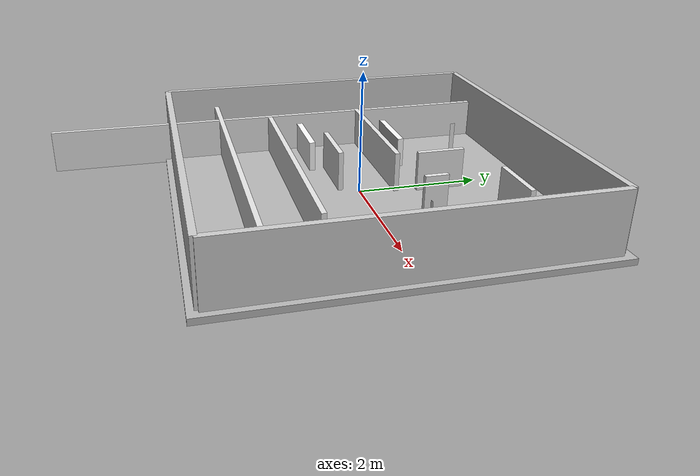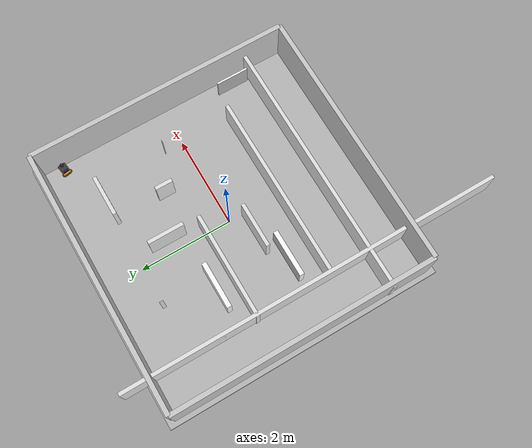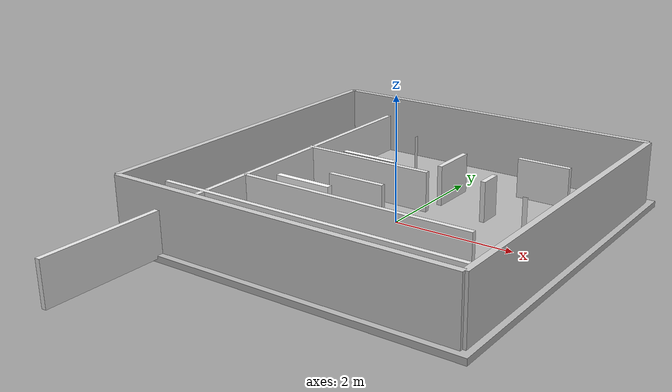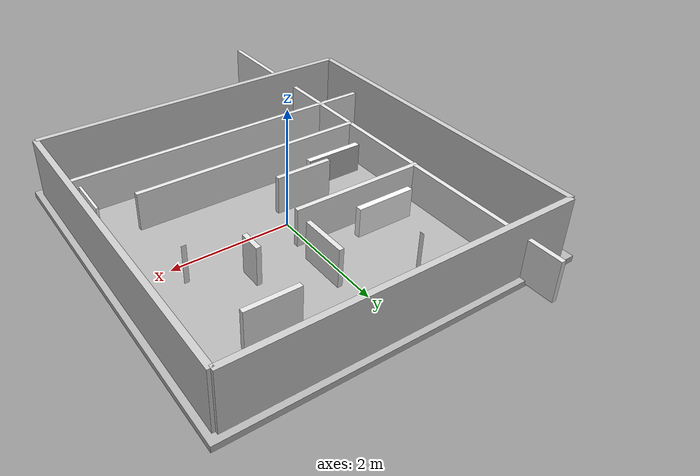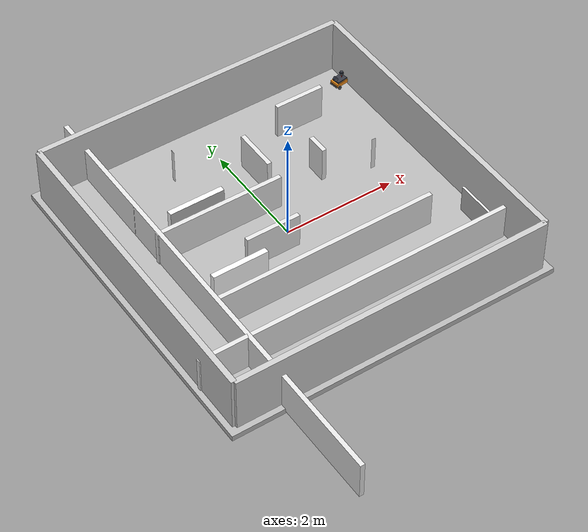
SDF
<sdf version="1.7">
 <world name="competition_world">
  <physics type="ode">
   <max_step_size>0.001</max_step_size>
   <real_time_factor>1</real_time_factor>
   <real_time_update_rate>1000</real_time_update_rate>
  </physics>
  <light name="sun" type="directional">
   <pose>0 0 10 0 -0 0</pose>
   <diffuse>0.8 0.8 0.8 1</diffuse>
   <specular>0.2 0.2 0.2 1</specular>
   <attenuation>
    <range>1000</range>
    <constant>0.9</constant>
    <linear>0.01</linear>
    <quadratic>0.001</quadratic>
   </attenuation>
   <direction>-0.5 0.1 -0.9</direction>
   <spot><inner_angle>0</inner_angle><outer_angle>0</outer_angle><falloff>0</falloff></spot>
  </light>
  <model name="competition_ground">
   <pose>-0.007054 -0.011171 0 0 -0 0</pose>
   <static>1</static>
   <link name="link">
    <collision name="collision"><geometry><box><size>6 6 0.1</size></box></geometry></collision>
    <visual name="visual">
     <geometry><box><size>6 6 0.1</size></box></geometry>
     <material>
      <script>
       <uri>model://competition_ground/materials/scripts</uri>
       <uri>model://competition_ground/materials/textures</uri>
       <name>CompetitionGround/Ground</name>
      </script>
      <pbr><metal><albedo_map>model://competition_ground/materials/textures/map.png</albedo_map></metal></pbr>
     </material>
    </visual>
   </link>
   <link name="north_wall">
    <pose>0 2.85 0.55 0 -0 0</pose>
    <collision name="c"><geometry><box><size>5.7 0.1 1</size></box></geometry></collision>
    <visual name="v">
     <geometry><box><size>5.7 0.1 1</size></box></geometry>
     <material><ambient>0.7 0.7 0.7 1</ambient><diffuse>0.8 0.8 0.8 1</diffuse></material>
    </visual>
   </link>
   <link name="south_wall">
    <pose>0 -2.85 0.55 0 -0 0</pose>
    <collision name="c"><geometry><box><size>5.7 0.1 1</size></box></geometry></collision>
    <visual name="v">
     <geometry><box><size>5.7 0.1 1</size></box></geometry>
     <material><ambient>0.7 0.7 0.7 1</ambient><diffuse>0.8 0.8 0.8 1</diffuse></material>
    </visual>
   </link>
   <link name="west_wall">
    <pose>-2.85 0 0.55 0 -0 0</pose>
    <collision name="c"><geometry><box><size>0.1 5.7 1</size></box></geometry></collision>
    <visual name="v">
     <geometry><box><size>0.1 5.7 1</size></box></geometry>
     <material><ambient>0.7 0.7 0.7 1</ambient><diffuse>0.8 0.8 0.8 1</diffuse></material>
    </visual>
   </link>
   <link name="east_wall">
    <pose>2.85 0 0.55 0 -0 0</pose>
    <collision name="c"><geometry><box><size>0.1 5.7 1</size></box></geometry></collision>
    <visual name="v">
     <geometry><box><size>0.1 5.7 1</size></box></geometry>
     <material><ambient>0.7 0.7 0.7 1</ambient><diffuse>0.8 0.8 0.8 1</diffuse></material>
    </visual>
   </link>
  </model>
  <model name="person_area_1">
   <static>1</static>
   <link name="link">
    <visual name="visual"><geometry><mesh><uri>model://ro1/meshes/ro1.dae</uri></mesh></geometry></visual>
    <collision name="collision"><geometry><box><size>0.6 0.3 1.7</size></box></geometry></collision>
   </link>
   <pose>-1.13803 0.913555 0.1 0 -0 0</pose>
  </model>
  <model name="person_area_2">
   <static>1</static>
   <link name="link">
    <visual name="visual"><geometry><mesh><uri>model://ro2/meshes/ro2.dae</uri></mesh></geometry></visual>
    <collision name="collision"><geometry><box><size>0.6 0.3 1.7</size></box></geometry></collision>
   </link>
   <pose>-1.3 -0.6 0.1 0 -0 3.14159</pose>
  </model>
  <model name="car_plate_area">
   <static>1</static>
   <link name="link">
    <visual name="visual"><geometry><mesh><uri>model://cp/meshes/cp.dae</uri></mesh></geometry></visual>
    <collision name="collision"><geometry><box><size>0.4 0.3 0.3</size></box></geometry></collision>
   </link>
   <pose>2.55 -1.55 0.1 0 0 -1.57079</pose>
  </model>
  <model name="my_car">
   <pose>2.66017 2.38667 0.05 -0 -0 -2.98949</pose>
   <link name="chassis">
    <inertial>
     <mass>1.2</mass>
     <inertia><ixx>0.0034</ixx><ixy>0</ixy><ixz>0</ixz><iyy>0.0063</iyy><iyz>0</iyz><izz>0.0087</izz></inertia>
    </inertial>
    <collision name="body_collision">
     <pose>0 0 0.075 0 -0 0</pose>
     <geometry><box><size>0.24 0.17 0.07</size></box></geometry>
    </collision>
    <collision name="caster_front">
     <pose>0.09 0 0.015 0 -0 0</pose>
     <geometry><sphere><radius>0.015</radius></sphere></geometry>
     <surface><friction><ode><mu>0.01</mu><mu2>0.01</mu2></ode></friction></surface>
    </collision>
    <collision name="caster_back">
     <pose>-0.09 0 0.015 0 -0 0</pose>
     <geometry><sphere><radius>0.015</radius></sphere></geometry>
     <surface><friction><ode><mu>0.01</mu><mu2>0.01</mu2></ode></friction></surface>
    </collision>
    <visual name="body_lower">
     <pose>0 0 0.075 0 -0 0</pose>
     <geometry><box><size>0.24 0.17 0.07</size></box></geometry>
     <material>
      <ambient>0.85 0.45 0.05 1</ambient>
      <diffuse>1 0.58 0.1 1</diffuse>
      <specular>0.5 0.5 0.5 1</specular>
     </material>
    </visual>
    <visual name="body_upper">
     <pose>-0.01 0 0.125 0 -0 0</pose>
     <geometry><box><size>0.2 0.15 0.035</size></box></geometry>
     <material>
      <ambient>0.12 0.12 0.14 1</ambient>
      <diffuse>0.22 0.23 0.27 1</diffuse>
      <specular>0.6 0.6 0.65 1</specular>
     </material>
    </visual>
    <visual name="bumper">
     <pose>0.125 0 0.055 0 -0 0</pose>
     <geometry><box><size>0.015 0.16 0.03</size></box></geometry>
     <material>
      <ambient>0.05 0.05 0.05 1</ambient>
      <diffuse>0.1 0.1 0.1 1</diffuse>
      <specular>0.3 0.3 0.3 1</specular>
     </material>
    </visual>
    <visual name="caster_front_v">
     <pose>0.09 0 0.015 0 -0 0</pose>
     <geometry><sphere><radius>0.015</radius></sphere></geometry>
     <material><ambient>0.02 0.02 0.02 1</ambient><diffuse>0.05 0.05 0.05 1</diffuse></material>
    </visual>
    <visual name="caster_back_v">
     <pose>-0.09 0 0.015 0 -0 0</pose>
     <geometry><sphere><radius>0.015</radius></sphere></geometry>
     <material><ambient>0.02 0.02 0.02 1</ambient><diffuse>0.05 0.05 0.05 1</diffuse></material>
    </visual>
    <visual name="camera_mount">
     <pose>0.075 0 0.155 0 -0 0</pose>
     <geometry><box><size>0.03 0.04 0.025</size></box></geometry>
     <material>
      <ambient>0.05 0.05 0.05 1</ambient>
      <diffuse>0.1 0.1 0.1 1</diffuse>
      <specular>0.3 0.3 0.3 1</specular>
     </material>
    </visual>
    <visual name="camera_body">
     <pose>0.085 0 0.185 0 -0 0</pose>
     <geometry><box><size>0.035 0.09 0.03</size></box></geometry>
     <material>
      <ambient>0.08 0.08 0.1 1</ambient>
      <diffuse>0.15 0.16 0.2 1</diffuse>
      <specular>0.7 0.7 0.75 1</specular>
     </material>
    </visual>
    <visual name="camera_lens">
     <pose>0.105 0 0.185 3.14159 1.57079 3.14159</pose>
     <geometry><cylinder><radius>0.011</radius><length>0.008</length></cylinder></geometry>
     <material>
      <ambient>0.02 0.05 0.15 1</ambient>
      <diffuse>0.05 0.15 0.45 1</diffuse>
      <specular>1 1 1 1</specular>
      <emissive>0.02 0.05 0.15 1</emissive>
     </material>
    </visual>
    <visual name="lidar_mast">
     <pose>-0.05 0 0.175 0 -0 0</pose>
     <geometry><cylinder><radius>0.008</radius><length>0.07</length></cylinder></geometry>
     <material>
      <ambient>0.5 0.08 0.05 1</ambient>
      <diffuse>0.8 0.15 0.1 1</diffuse>
      <specular>0.4 0.4 0.4 1</specular>
     </material>
    </visual>
    <visual name="lidar_base">
     <pose>-0.05 0 0.2225 0 -0 0</pose>
     <geometry><cylinder><radius>0.038</radius><length>0.025</length></cylinder></geometry>
     <material>
      <ambient>0.03 0.03 0.035 1</ambient>
      <diffuse>0.08 0.08 0.1 1</diffuse>
      <specular>0.5 0.5 0.55 1</specular>
     </material>
    </visual>
    <visual name="lidar_head">
     <pose>-0.05 0 0.2475 0 -0 0</pose>
     <geometry><cylinder><radius>0.028</radius><length>0.028</length></cylinder></geometry>
     <material>
      <ambient>0.1 0.1 0.12 1</ambient>
      <diffuse>0.2 0.21 0.25 1</diffuse>
      <specular>0.8 0.8 0.85 1</specular>
     </material>
    </visual>
    <visual name="lidar_window">
     <pose>-0.05 0 0.243 0 -0 0</pose>
     <geometry><cylinder><radius>0.0285</radius><length>0.01</length></cylinder></geometry>
     <material>
      <ambient>0.05 0.08 0.12 1</ambient>
      <diffuse>0.1 0.2 0.35 1</diffuse>
      <specular>1 1 1 1</specular>
     </material>
    </visual>
   </link>
   <link name="left_wheel">
    <pose>0.075 0.095 0.033 0 -0 0</pose>
    <inertial>
     <mass>0.15</mass>
     <inertia><ixx>0.0001</ixx><ixy>0</ixy><ixz>0</ixz><iyy>0.0001</iyy><iyz>0</iyz><izz>0.0001</izz></inertia>
    </inertial>
    <collision name="collision">
     <pose>0 0 0 1.5708 -0 0</pose>
     <geometry><cylinder><radius>0.033</radius><length>0.022</length></cylinder></geometry>
     <surface><friction><ode><mu>1.5</mu><mu2>1.5</mu2></ode></friction></surface>
    </collision>
    <visual name="visual">
     <pose>0 0 0 1.5708 -0 0</pose>
     <geometry><cylinder><radius>0.033</radius><length>0.022</length></cylinder></geometry>
     <material>
      <ambient>0.02 0.02 0.02 1</ambient>
      <diffuse>0.05 0.05 0.05 1</diffuse>
      <specular>0.1 0.1 0.1 1</specular>
     </material>
    </visual>
    <visual name="hub">
     <pose>0 0.012 0 1.5708 -0 0</pose>
     <geometry><cylinder><radius>0.014</radius><length>0.002</length></cylinder></geometry>
     <material>
      <ambient>0.5 0.5 0.52 1</ambient>
      <diffuse>0.75 0.75 0.78 1</diffuse>
      <specular>0.9 0.9 0.9 1</specular>
     </material>
    </visual>
   </link>
   <joint name="left_wheel_joint" type="revolute">
    <parent>chassis</parent>
    <child>left_wheel</child>
    <axis>
     <xyz>0 1 0</xyz>
     <limit><lower>-1e+16</lower><upper>1e+16</upper></limit>
     <dynamics><spring_reference>0</spring_reference><spring_stiffness>0</spring_stiffness></dynamics>
    </axis>
   </joint>
   <link name="right_wheel">
    <pose>0.075 -0.095 0.033 0 -0 0</pose>
    <inertial>
     <mass>0.15</mass>
     <inertia><ixx>0.0001</ixx><ixy>0</ixy><ixz>0</ixz><iyy>0.0001</iyy><iyz>0</iyz><izz>0.0001</izz></inertia>
    </inertial>
    <collision name="collision">
     <pose>0 0 0 1.5708 -0 0</pose>
     <geometry><cylinder><radius>0.033</radius><length>0.022</length></cylinder></geometry>
     <surface><friction><ode><mu>1.5</mu><mu2>1.5</mu2></ode></friction></surface>
    </collision>
    <visual name="visual">
     <pose>0 0 0 1.5708 -0 0</pose>
     <geometry><cylinder><radius>0.033</radius><length>0.022</length></cylinder></geometry>
     <material>
      <ambient>0.02 0.02 0.02 1</ambient>
      <diffuse>0.05 0.05 0.05 1</diffuse>
      <specular>0.1 0.1 0.1 1</specular>
     </material>
    </visual>
    <visual name="hub">
     <pose>0 -0.012 0 1.5708 -0 0</pose>
     <geometry><cylinder><radius>0.014</radius><length>0.002</length></cylinder></geometry>
     <material>
      <ambient>0.5 0.5 0.52 1</ambient>
      <diffuse>0.75 0.75 0.78 1</diffuse>
      <specular>0.9 0.9 0.9 1</specular>
     </material>
    </visual>
   </link>
   <joint name="right_wheel_joint" type="revolute">
    <parent>chassis</parent>
    <child>right_wheel</child>
    <axis>
     <xyz>0 1 0</xyz>
     <limit><lower>-1e+16</lower><upper>1e+16</upper></limit>
     <dynamics><spring_reference>0</spring_reference><spring_stiffness>0</spring_stiffness></dynamics>
    </axis>
   </joint>
   <plugin name="diff_drive" filename="libgazebo_ros_diff_drive.so">
    <alwaysOn>1</alwaysOn>
    <updateRate>50</updateRate>
    <legacyMode>0</legacyMode>
    <leftJoint>left_wheel_joint</leftJoint>
    <rightJoint>right_wheel_joint</rightJoint>
    <wheelSeparation>0.19</wheelSeparation>
    <wheelDiameter>0.066</wheelDiameter>
    <torque>10</torque>
    <commandTopic>cmd_vel</commandTopic>
    <odometryTopic>odom</odometryTopic>
    <odometryFrame>odom</odometryFrame>
    <robotBaseFrame>chassis</robotBaseFrame>
    <publishOdometry>1</publishOdometry>
    <publishTf>1</publishTf>
    <publishWheelTF>0</publishWheelTF>
    <publishWheelJointState>1</publishWheelJointState>
   </plugin>
   <link name="camera_link">
    <pose>0.105 0 0.185 0 -0 0</pose>
    <inertial>
     <mass>0.01</mass>
     <inertia><ixx>1e-06</ixx><ixy>0</ixy><ixz>0</ixz><iyy>1e-06</iyy><iyz>0</iyz><izz>1e-06</izz></inertia>
    </inertial>
    <sensor name="camera" type="camera">
     <always_on>1</always_on>
     <update_rate>20</update_rate>
     <visualize>1</visualize>
     <camera>
      <horizontal_fov>1.047</horizontal_fov>
      <image><width>640</width><height>480</height><format>R8G8B8</format></image>
      <clip><near>0.05</near><far>10</far></clip>
     </camera>
     <plugin name="camera_plugin" filename="libgazebo_ros_camera.so">
      <alwaysOn>1</alwaysOn>
      <cameraName>camera</cameraName>
      <imageTopicName>image_raw</imageTopicName>
      <cameraInfoTopicName>camera_info</cameraInfoTopicName>
      <frameName>camera_link</frameName>
      <hackBaseline>0</hackBaseline>
     </plugin>
    </sensor>
   </link>
   <joint name="camera_joint" type="fixed"><parent>chassis</parent><child>camera_link</child></joint>
   <link name="lidar_link">
    <pose>-0.05 0 0.25 0 -0 0</pose>
    <inertial>
     <mass>0.01</mass>
     <inertia><ixx>1e-06</ixx><ixy>0</ixy><ixz>0</ixz><iyy>1e-06</iyy><iyz>0</iyz><izz>1e-06</izz></inertia>
    </inertial>
    <sensor name="lidar" type="ray">
     <always_on>1</always_on>
     <update_rate>10</update_rate>
     <visualize>0</visualize>
     <ray>
      <scan>
       <horizontal>
        <samples>360</samples>
        <resolution>1</resolution>
        <min_angle>-3.14159</min_angle>
        <max_angle>3.14159</max_angle>
       </horizontal>
       <vertical><samples>1</samples><min_angle>0</min_angle><max_angle>0</max_angle></vertical>
      </scan>
      <range><min>0.06</min><max>8</max><resolution>0.01</resolution></range>
     </ray>
     <plugin name="lidar_plugin" filename="libgazebo_ros_laser.so">
      <topicName>scan</topicName>
      <frameName>lidar_link</frameName>
     </plugin>
    </sensor>
   </link>
   <joint name="lidar_joint" type="fixed"><parent>chassis</parent><child>lidar_link</child></joint>
  </model>
  <model name="low_wall_0">
   <static>1</static>
   <pose>-0.081356 -1.98399 0.35 0 -0 0</pose>
   <link name="link">
    <visual name="v">
     <geometry><box><size>5.68869 0.08 0.7</size></box></geometry>
     <material><ambient>0.85 0.85 0.85 1</ambient><diffuse>0.9 0.9 0.9 1</diffuse></material>
    </visual>
    <collision name="c"><geometry><box><size>5.68869 0.08 0.7</size></box></geometry></collision>
   </link>
  </model>
  <model name="low_wall_1">
   <static>1</static>
   <pose>-0.036421 -1.10395 0.35 0 -0 0</pose>
   <link name="link">
    <visual name="v">
     <geometry><box><size>4.02198 0.08 0.7</size></box></geometry>
     <material><ambient>0.85 0.85 0.85 1</ambient><diffuse>0.9 0.9 0.9 1</diffuse></material>
    </visual>
    <collision name="c"><geometry><box><size>4.02198 0.08 0.7</size></box></geometry></collision>
   </link>
  </model>
  <model name="low_wall_2">
   <static>1</static>
   <pose>-0.504913 -0.318492 0.35 0 -0 0</pose>
   <link name="link">
    <visual name="v">
     <geometry><box><size>0.978753 0.08 0.7</size></box></geometry>
     <material><ambient>0.85 0.85 0.85 1</ambient><diffuse>0.9 0.9 0.9 1</diffuse></material>
    </visual>
    <collision name="c"><geometry><box><size>0.978753 0.08 0.7</size></box></geometry></collision>
   </link>
  </model>
  <model name="low_wall_3">
   <static>1</static>
   <pose>1.51532 1.93752 0.35 0 -0 0</pose>
   <link name="link">
    <visual name="v">
     <geometry><box><size>0.886981 0.08 0.7</size></box></geometry>
     <material><ambient>0.85 0.85 0.85 1</ambient><diffuse>0.9 0.9 0.9 1</diffuse></material>
    </visual>
    <collision name="c"><geometry><box><size>0.886981 0.08 0.7</size></box></geometry></collision>
   </link>
  </model>
  <model name="low_wall_cl">
   <static>1</static>
   <pose>-0.908954 1.97551 0.35 0 -0 0</pose>
   <link name="link">
    <visual name="v">
     <geometry><box><size>0 0.08 0.7</size></box></geometry>
     <material><ambient>0.85 0.85 0.85 1</ambient><diffuse>0.9 0.9 0.9 1</diffuse></material>
    </visual>
    <collision name="c"><geometry><box><size>0 0.08 0.7</size></box></geometry></collision>
   </link>
  </model>
  <model name="low_wall_og">
   <static>1</static>
   <pose>-0.936386 0.547194 0.35 0 -0 0</pose>
   <link name="link">
    <visual name="v">
     <geometry><box><size>2.30571 0.08 0.7</size></box></geometry>
     <material><ambient>0.85 0.85 0.85 1</ambient><diffuse>0.9 0.9 0.9 1</diffuse></material>
    </visual>
    <collision name="c"><geometry><box><size>2.30571 0.08 0.7</size></box></geometry></collision>
   </link>
  </model>
  <model name="low_wall_3c">
   <static>1</static>
   <pose>-2.03216 -0.713632 0.35 0 -0 1.5708</pose>
   <link name="link">
    <visual name="v">
     <geometry><box><size>8.35316 0.08 0.7</size></box></geometry>
     <material><ambient>0.85 0.85 0.85 1</ambient><diffuse>0.9 0.9 0.9 1</diffuse></material>
    </visual>
    <collision name="c"><geometry><box><size>8.35316 0.08 0.7</size></box></geometry></collision>
   </link>
  </model>
  <model name="low_wall_4">
   <static>1</static>
   <pose>1.1339 0.823369 0.35 0 0 -1.5708</pose>
   <link name="link">
    <visual name="v">
     <geometry><box><size>0.370162 0.08 0.7</size></box></geometry>
     <material><ambient>0.85 0.85 0.85 1</ambient><diffuse>0.9 0.9 0.9 1</diffuse></material>
    </visual>
    <collision name="c"><geometry><box><size>0.370162 0.08 0.7</size></box></geometry></collision>
   </link>
  </model>
  <model name="low_wall_4c">
   <static>1</static>
   <pose>1.95229 0.413447 0.35 0 0 -1.5708</pose>
   <link name="link">
    <visual name="v">
     <geometry><box><size>0 0.08 0.7</size></box></geometry>
     <material><ambient>0.85 0.85 0.85 1</ambient><diffuse>0.9 0.9 0.9 1</diffuse></material>
    </visual>
    <collision name="c"><geometry><box><size>0 0.08 0.7</size></box></geometry></collision>
   </link>
  </model>
  <model name="low_wall_5">
   <static>1</static>
   <pose>0.23207 1.2676 0.35 0 0 -1.5708</pose>
   <link name="link">
    <visual name="v">
     <geometry><box><size>0.777015 0.08 0.7</size></box></geometry>
     <material><ambient>0.85 0.85 0.85 1</ambient><diffuse>0.9 0.9 0.9 1</diffuse></material>
    </visual>
    <collision name="c"><geometry><box><size>0.777015 0.08 0.7</size></box></geometry></collision>
   </link>
  </model>
  <model name="low_wall_5c">
   <static>1</static>
   <pose>-2.03814 1.2562 0.35 0 0 -1.5708</pose>
   <link name="link">
    <visual name="v">
     <geometry><box><size>0.000184 0.08 0.7</size></box></geometry>
     <material><ambient>0.85 0.85 0.85 1</ambient><diffuse>0.9 0.9 0.9 1</diffuse></material>
    </visual>
    <collision name="c"><geometry><box><size>0.000184 0.08 0.7</size></box></geometry></collision>
   </link>
  </model>
  <gravity>0 0 -9.8</gravity>
  <magnetic_field>6e-06 2.3e-05 -4.2e-05</magnetic_field>
  <atmosphere type="adiabatic"/>
  <scene><ambient>0.4 0.4 0.4 1</ambient><background>0.7 0.7 0.7 1</background><shadows>1</shadows></scene>
  <spherical_coordinates>
   <surface_model>EARTH_WGS84</surface_model>
   <latitude_deg>0</latitude_deg>
   <longitude_deg>0</longitude_deg>
   <elevation>0</elevation>
   <heading_deg>0</heading_deg>
  </spherical_coordinates>
 </world>
</sdf>
